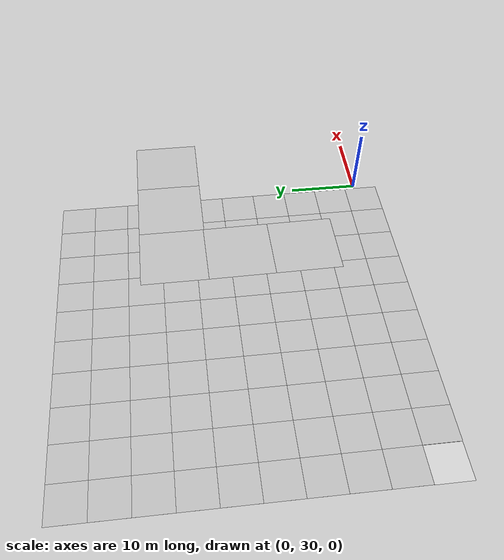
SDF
<sdf version="1.4">
 <world name="default">
  <model name="pavement_plane_3">
   <static>1</static>
   <link name="link">
    <collision name="collision">
     <geometry><plane><normal>0 0 1</normal><size>50 50</size></plane></geometry>
     <surface><friction><ode><mu>100</mu><mu2>50</mu2></ode></friction></surface>
    </collision>
    <visual name="visual_0">
     <pose>-25 -25 0 0 -0 0</pose>
     <cast_shadows>0</cast_shadows>
     <geometry><plane><normal>0 0 1</normal><size>5 5</size></plane></geometry>
     <material>
      <script>
       <uri>model://pavement_plane/materials/scripts</uri>
       <uri>model://pavement_plane/materials/textures</uri>
       <name>vrc/pavement</name>
      </script>
     </material>
    </visual>
    <visual name="visual_1">
     <pose>-20 -25 0 0 -0 0</pose>
     <cast_shadows>0</cast_shadows>
     <geometry><plane><normal>0 0 1</normal><size>5 5</size></plane></geometry>
     <material>
      <script>
       <uri>model://pavement_plane/materials/scripts</uri>
       <uri>model://pavement_plane/materials/textures</uri>
       <name>vrc/pavement</name>
      </script>
     </material>
    </visual>
    <visual name="visual_2">
     <pose>-15 -25 0 0 -0 0</pose>
     <cast_shadows>0</cast_shadows>
     <geometry><plane><normal>0 0 1</normal><size>5 5</size></plane></geometry>
     <material>
      <script>
       <uri>model://pavement_plane/materials/scripts</uri>
       <uri>model://pavement_plane/materials/textures</uri>
       <name>vrc/pavement</name>
      </script>
     </material>
    </visual>
    <visual name="visual_3">
     <pose>-10 -25 0 0 -0 0</pose>
     <cast_shadows>0</cast_shadows>
     <geometry><plane><normal>0 0 1</normal><size>5 5</size></plane></geometry>
     <material>
      <script>
       <uri>model://pavement_plane/materials/scripts</uri>
       <uri>model://pavement_plane/materials/textures</uri>
       <name>vrc/pavement</name>
      </script>
     </material>
    </visual>
    <visual name="visual_4">
     <pose>-5 -25 0 0 -0 0</pose>
     <cast_shadows>0</cast_shadows>
     <geometry><plane><normal>0 0 1</normal><size>5 5</size></plane></geometry>
     <material>
      <script>
       <uri>model://pavement_plane/materials/scripts</uri>
       <uri>model://pavement_plane/materials/textures</uri>
       <name>vrc/pavement</name>
      </script>
     </material>
    </visual>
    <visual name="visual_5">
     <pose>0 -25 0 0 -0 0</pose>
     <cast_shadows>0</cast_shadows>
     <geometry><plane><normal>0 0 1</normal><size>5 5</size></plane></geometry>
     <material>
      <script>
       <uri>model://pavement_plane/materials/scripts</uri>
       <uri>model://pavement_plane/materials/textures</uri>
       <name>vrc/pavement</name>
      </script>
     </material>
    </visual>
    <visual name="visual_6">
     <pose>5 -25 0 0 -0 0</pose>
     <cast_shadows>0</cast_shadows>
     <geometry><plane><normal>0 0 1</normal><size>5 5</size></plane></geometry>
     <material>
      <script>
       <uri>model://pavement_plane/materials/scripts</uri>
       <uri>model://pavement_plane/materials/textures</uri>
       <name>vrc/pavement</name>
      </script>
     </material>
    </visual>
    <visual name="visual_7">
     <pose>10 -25 0 0 -0 0</pose>
     <cast_shadows>0</cast_shadows>
     <geometry><plane><normal>0 0 1</normal><size>5 5</size></plane></geometry>
     <material>
      <script>
       <uri>model://pavement_plane/materials/scripts</uri>
       <uri>model://pavement_plane/materials/textures</uri>
       <name>vrc/pavement</name>
      </script>
     </material>
    </visual>
    <visual name="visual_8">
     <pose>15 -25 0 0 -0 0</pose>
     <cast_shadows>0</cast_shadows>
     <geometry><plane><normal>0 0 1</normal><size>5 5</size></plane></geometry>
     <material>
      <script>
       <uri>model://pavement_plane/materials/scripts</uri>
       <uri>model://pavement_plane/materials/textures</uri>
       <name>vrc/pavement</name>
      </script>
     </material>
    </visual>
    <visual name="visual_9">
     <pose>20 -25 0 0 -0 0</pose>
     <cast_shadows>0</cast_shadows>
     <geometry><plane><normal>0 0 1</normal><size>5 5</size></plane></geometry>
     <material>
      <script>
       <uri>model://pavement_plane/materials/scripts</uri>
       <uri>model://pavement_plane/materials/textures</uri>
       <name>vrc/pavement</name>
      </script>
     </material>
    </visual>
    <visual name="visual_10">
     <pose>-25 -20 0 0 -0 0</pose>
     <cast_shadows>0</cast_shadows>
     <geometry><plane><normal>0 0 1</normal><size>5 5</size></plane></geometry>
     <material>
      <script>
       <uri>model://pavement_plane/materials/scripts</uri>
       <uri>model://pavement_plane/materials/textures</uri>
       <name>vrc/pavement</name>
      </script>
     </material>
    </visual>
    <visual name="visual_11">
     <pose>-20 -20 0 0 -0 0</pose>
     <cast_shadows>0</cast_shadows>
     <geometry><plane><normal>0 0 1</normal><size>5 5</size></plane></geometry>
     <material>
      <script>
       <uri>model://pavement_plane/materials/scripts</uri>
       <uri>model://pavement_plane/materials/textures</uri>
       <name>vrc/pavement</name>
      </script>
     </material>
    </visual>
    <visual name="visual_12">
     <pose>-15 -20 0 0 -0 0</pose>
     <cast_shadows>0</cast_shadows>
     <geometry><plane><normal>0 0 1</normal><size>5 5</size></plane></geometry>
     <material>
      <script>
       <uri>model://pavement_plane/materials/scripts</uri>
       <uri>model://pavement_plane/materials/textures</uri>
       <name>vrc/pavement</name>
      </script>
     </material>
    </visual>
    <visual name="visual_13">
     <pose>-10 -20 0 0 -0 0</pose>
     <cast_shadows>0</cast_shadows>
     <geometry><plane><normal>0 0 1</normal><size>5 5</size></plane></geometry>
     <material>
      <script>
       <uri>model://pavement_plane/materials/scripts</uri>
       <uri>model://pavement_plane/materials/textures</uri>
       <name>vrc/pavement</name>
      </script>
     </material>
    </visual>
    <visual name="visual_14">
     <pose>-5 -20 0 0 -0 0</pose>
     <cast_shadows>0</cast_shadows>
     <geometry><plane><normal>0 0 1</normal><size>5 5</size></plane></geometry>
     <material>
      <script>
       <uri>model://pavement_plane/materials/scripts</uri>
       <uri>model://pavement_plane/materials/textures</uri>
       <name>vrc/pavement</name>
      </script>
     </material>
    </visual>
    <visual name="visual_15">
     <pose>0 -20 0 0 -0 0</pose>
     <cast_shadows>0</cast_shadows>
     <geometry><plane><normal>0 0 1</normal><size>5 5</size></plane></geometry>
     <material>
      <script>
       <uri>model://pavement_plane/materials/scripts</uri>
       <uri>model://pavement_plane/materials/textures</uri>
       <name>vrc/pavement</name>
      </script>
     </material>
    </visual>
    <visual name="visual_16">
     <pose>5 -20 0 0 -0 0</pose>
     <cast_shadows>0</cast_shadows>
     <geometry><plane><normal>0 0 1</normal><size>5 5</size></plane></geometry>
     <material>
      <script>
       <uri>model://pavement_plane/materials/scripts</uri>
       <uri>model://pavement_plane/materials/textures</uri>
       <name>vrc/pavement</name>
      </script>
     </material>
    </visual>
    <visual name="visual_17">
     <pose>10 -20 0 0 -0 0</pose>
     <cast_shadows>0</cast_shadows>
     <geometry><plane><normal>0 0 1</normal><size>5 5</size></plane></geometry>
     <material>
      <script>
       <uri>model://pavement_plane/materials/scripts</uri>
       <uri>model://pavement_plane/materials/textures</uri>
       <name>vrc/pavement</name>
      </script>
     </material>
    </visual>
    <visual name="visual_18">
     <pose>15 -20 0 0 -0 0</pose>
     <cast_shadows>0</cast_shadows>
     <geometry><plane><normal>0 0 1</normal><size>5 5</size></plane></geometry>
     <material>
      <script>
       <uri>model://pavement_plane/materials/scripts</uri>
       <uri>model://pavement_plane/materials/textures</uri>
       <name>vrc/pavement</name>
      </script>
     </material>
    </visual>
    <visual name="visual_19">
     <pose>20 -20 0 0 -0 0</pose>
     <cast_shadows>0</cast_shadows>
     <geometry><plane><normal>0 0 1</normal><size>5 5</size></plane></geometry>
     <material>
      <script>
       <uri>model://pavement_plane/materials/scripts</uri>
       <uri>model://pavement_plane/materials/textures</uri>
       <name>vrc/pavement</name>
      </script>
     </material>
    </visual>
    <visual name="visual_20">
     <pose>-25 -15 0 0 -0 0</pose>
     <cast_shadows>0</cast_shadows>
     <geometry><plane><normal>0 0 1</normal><size>5 5</size></plane></geometry>
     <material>
      <script>
       <uri>model://pavement_plane/materials/scripts</uri>
       <uri>model://pavement_plane/materials/textures</uri>
       <name>vrc/pavement</name>
      </script>
     </material>
    </visual>
    <visual name="visual_21">
     <pose>-20 -15 0 0 -0 0</pose>
     <cast_shadows>0</cast_shadows>
     <geometry><plane><normal>0 0 1</normal><size>5 5</size></plane></geometry>
     <material>
      <script>
       <uri>model://pavement_plane/materials/scripts</uri>
       <uri>model://pavement_plane/materials/textures</uri>
       <name>vrc/pavement</name>
      </script>
     </material>
    </visual>
    <visual name="visual_22">
     <pose>-15 -15 0 0 -0 0</pose>
     <cast_shadows>0</cast_shadows>
     <geometry><plane><normal>0 0 1</normal><size>5 5</size></plane></geometry>
     <material>
      <script>
       <uri>model://pavement_plane/materials/scripts</uri>
       <uri>model://pavement_plane/materials/textures</uri>
       <name>vrc/pavement</name>
      </script>
     </material>
    </visual>
    <visual name="visual_23">
     <pose>-10 -15 0 0 -0 0</pose>
     <cast_shadows>0</cast_shadows>
     <geometry><plane><normal>0 0 1</normal><size>5 5</size></plane></geometry>
     <material>
      <script>
       <uri>model://pavement_plane/materials/scripts</uri>
       <uri>model://pavement_plane/materials/textures</uri>
       <name>vrc/pavement</name>
      </script>
     </material>
    </visual>
    <visual name="visual_24">
     <pose>-5 -15 0 0 -0 0</pose>
     <cast_shadows>0</cast_shadows>
     <geometry><plane><normal>0 0 1</normal><size>5 5</size></plane></geometry>
     <material>
      <script>
       <uri>model://pavement_plane/materials/scripts</uri>
       <uri>model://pavement_plane/materials/textures</uri>
       <name>vrc/pavement</name>
      </script>
     </material>
    </visual>
    <visual name="visual_25">
     <pose>0 -15 0 0 -0 0</pose>
     <cast_shadows>0</cast_shadows>
     <geometry><plane><normal>0 0 1</normal><size>5 5</size></plane></geometry>
     <material>
      <script>
       <uri>model://pavement_plane/materials/scripts</uri>
       <uri>model://pavement_plane/materials/textures</uri>
       <name>vrc/pavement</name>
      </script>
     </material>
    </visual>
    <visual name="visual_26">
     <pose>5 -15 0 0 -0 0</pose>
     <cast_shadows>0</cast_shadows>
     <geometry><plane><normal>0 0 1</normal><size>5 5</size></plane></geometry>
     <material>
      <script>
       <uri>model://pavement_plane/materials/scripts</uri>
       <uri>model://pavement_plane/materials/textures</uri>
       <name>vrc/pavement</name>
      </script>
     </material>
    </visual>
    <visual name="visual_27">
     <pose>10 -15 0 0 -0 0</pose>
     <cast_shadows>0</cast_shadows>
     <geometry><plane><normal>0 0 1</normal><size>5 5</size></plane></geometry>
     <material>
      <script>
       <uri>model://pavement_plane/materials/scripts</uri>
       <uri>model://pavement_plane/materials/textures</uri>
       <name>vrc/pavement</name>
      </script>
     </material>
    </visual>
    <visual name="visual_28">
     <pose>15 -15 0 0 -0 0</pose>
     <cast_shadows>0</cast_shadows>
     <geometry><plane><normal>0 0 1</normal><size>5 5</size></plane></geometry>
     <material>
      <script>
       <uri>model://pavement_plane/materials/scripts</uri>
       <uri>model://pavement_plane/materials/textures</uri>
       <name>vrc/pavement</name>
      </script>
     </material>
    </visual>
    <visual name="visual_29">
     <pose>20 -15 0 0 -0 0</pose>
     <cast_shadows>0</cast_shadows>
     <geometry><plane><normal>0 0 1</normal><size>5 5</size></plane></geometry>
     <material>
      <script>
       <uri>model://pavement_plane/materials/scripts</uri>
       <uri>model://pavement_plane/materials/textures</uri>
       <name>vrc/pavement</name>
      </script>
     </material>
    </visual>
    <visual name="visual_30">
     <pose>-25 -10 0 0 -0 0</pose>
     <cast_shadows>0</cast_shadows>
     <geometry><plane><normal>0 0 1</normal><size>5 5</size></plane></geometry>
     <material>
      <script>
       <uri>model://pavement_plane/materials/scripts</uri>
       <uri>model://pavement_plane/materials/textures</uri>
       <name>vrc/pavement</name>
      </script>
     </material>
    </visual>
    <visual name="visual_31">
     <pose>-20 -10 0 0 -0 0</pose>
     <cast_shadows>0</cast_shadows>
     <geometry><plane><normal>0 0 1</normal><size>5 5</size></plane></geometry>
     <material>
      <script>
       <uri>model://pavement_plane/materials/scripts</uri>
       <uri>model://pavement_plane/materials/textures</uri>
       <name>vrc/pavement</name>
      </script>
     </material>
    </visual>
    <visual name="visual_32">
     <pose>-15 -10 0 0 -0 0</pose>
     <cast_shadows>0</cast_shadows>
     <geometry><plane><normal>0 0 1</normal><size>5 5</size></plane></geometry>
     <material>
      <script>
       <uri>model://pavement_plane/materials/scripts</uri>
       <uri>model://pavement_plane/materials/textures</uri>
       <name>vrc/pavement</name>
      </script>
     </material>
    </visual>
    <visual name="visual_33">
     <pose>-10 -10 0 0 -0 0</pose>
     <cast_shadows>0</cast_shadows>
     <geometry><plane><normal>0 0 1</normal><size>5 5</size></plane></geometry>
     <material>
      <script>
       <uri>model://pavement_plane/materials/scripts</uri>
       <uri>model://pavement_plane/materials/textures</uri>
       <name>vrc/pavement</name>
      </script>
     </material>
    </visual>
    <visual name="visual_34">
     <pose>-5 -10 0 0 -0 0</pose>
     <cast_shadows>0</cast_shadows>
     <geometry><plane><normal>0 0 1</normal><size>5 5</size></plane></geometry>
     <material>
      <script>
       <uri>model://pavement_plane/materials/scripts</uri>
       <uri>model://pavement_plane/materials/textures</uri>
       <name>vrc/pavement</name>
      </script>
     </material>
    </visual>
    <visual name="visual_35">
     <pose>0 -10 0 0 -0 0</pose>
     <cast_shadows>0</cast_shadows>
     <geometry><plane><normal>0 0 1</normal><size>5 5</size></plane></geometry>
     <material>
      <script>
       <uri>model://pavement_plane/materials/scripts</uri>
       <uri>model://pavement_plane/materials/textures</uri>
       <name>vrc/pavement</name>
      </script>
     </material>
    </visual>
    <visual name="visual_36">
     <pose>5 -10 0 0 -0 0</pose>
     <cast_shadows>0</cast_shadows>
     <geometry><plane><normal>0 0 1</normal><size>5 5</size></plane></geometry>
     <material>
      <script>
       <uri>model://pavement_plane/materials/scripts</uri>
       <uri>model://pavement_plane/materials/textures</uri>
       <name>vrc/pavement</name>
      </script>
     </material>
    </visual>
    <visual name="visual_37">
     <pose>10 -10 0 0 -0 0</pose>
     <cast_shadows>0</cast_shadows>
     <geometry><plane><normal>0 0 1</normal><size>5 5</size></plane></geometry>
     <material>
      <script>
       <uri>model://pavement_plane/materials/scripts</uri>
       <uri>model://pavement_plane/materials/textures</uri>
       <name>vrc/pavement</name>
      </script>
     </material>
    </visual>
    <visual name="visual_38">
     <pose>15 -10 0 0 -0 0</pose>
     <cast_shadows>0</cast_shadows>
     <geometry><plane><normal>0 0 1</normal><size>5 5</size></plane></geometry>
     <material>
      <script>
       <uri>model://pavement_plane/materials/scripts</uri>
       <uri>model://pavement_plane/materials/textures</uri>
       <name>vrc/pavement</name>
      </script>
     </material>
    </visual>
    <visual name="visual_39">
     <pose>20 -10 0 0 -0 0</pose>
     <cast_shadows>0</cast_shadows>
     <geometry><plane><normal>0 0 1</normal><size>5 5</size></plane></geometry>
     <material>
      <script>
       <uri>model://pavement_plane/materials/scripts</uri>
       <uri>model://pavement_plane/materials/textures</uri>
       <name>vrc/pavement</name>
      </script>
     </material>
    </visual>
    <visual name="visual_40">
     <pose>-25 -5 0 0 -0 0</pose>
     <cast_shadows>0</cast_shadows>
     <geometry><plane><normal>0 0 1</normal><size>5 5</size></plane></geometry>
     <material>
      <script>
       <uri>model://pavement_plane/materials/scripts</uri>
       <uri>model://pavement_plane/materials/textures</uri>
       <name>vrc/pavement</name>
      </script>
     </material>
    </visual>
    <visual name="visual_41">
     <pose>-20 -5 0 0 -0 0</pose>
     <cast_shadows>0</cast_shadows>
     <geometry><plane><normal>0 0 1</normal><size>5 5</size></plane></geometry>
     <material>
      <script>
       <uri>model://pavement_plane/materials/scripts</uri>
       <uri>model://pavement_plane/materials/textures</uri>
       <name>vrc/pavement</name>
      </script>
     </material>
    </visual>
    <visual name="visual_42">
     <pose>-15 -5 0 0 -0 0</pose>
     <cast_shadows>0</cast_shadows>
     <geometry><plane><normal>0 0 1</normal><size>5 5</size></plane></geometry>
     <material>
      <script>
       <uri>model://pavement_plane/materials/scripts</uri>
       <uri>model://pavement_plane/materials/textures</uri>
       <name>vrc/pavement</name>
      </script>
     </material>
    </visual>
    <visual name="visual_43">
     <pose>-10 -5 0 0 -0 0</pose>
     <cast_shadows>0</cast_shadows>
     <geometry><plane><normal>0 0 1</normal><size>5 5</size></plane></geometry>
     <material>
      <script>
       <uri>model://pavement_plane/materials/scripts</uri>
       <uri>model://pavement_plane/materials/textures</uri>
       <name>vrc/pavement</name>
      </script>
     </material>
    </visual>
    <visual name="visual_44">
     <pose>-5 -5 0 0 -0 0</pose>
     <cast_shadows>0</cast_shadows>
     <geometry><plane><normal>0 0 1</normal><size>5 5</size></plane></geometry>
     <material>
      <script>
       <uri>model://pavement_plane/materials/scripts</uri>
       <uri>model://pavement_plane/materials/textures</uri>
       <name>vrc/pavement</name>
      </script>
     </material>
    </visual>
    <visual name="visual_45">
     <pose>0 -5 0 0 -0 0</pose>
     <cast_shadows>0</cast_shadows>
     <geometry><plane><normal>0 0 1</normal><size>5 5</size></plane></geometry>
     <material>
      <script>
       <uri>model://pavement_plane/materials/scripts</uri>
       <uri>model://pavement_plane/materials/textures</uri>
       <name>vrc/pavement</name>
      </script>
     </material>
    </visual>
    <visual name="visual_46">
     <pose>5 -5 0 0 -0 0</pose>
     <cast_shadows>0</cast_shadows>
     <geometry><plane><normal>0 0 1</normal><size>5 5</size></plane></geometry>
     <material>
      <script>
       <uri>model://pavement_plane/materials/scripts</uri>
       <uri>model://pavement_plane/materials/textures</uri>
       <name>vrc/pavement</name>
      </script>
     </material>
    </visual>
    <visual name="visual_47">
     <pose>10 -5 0 0 -0 0</pose>
     <cast_shadows>0</cast_shadows>
     <geometry><plane><normal>0 0 1</normal><size>5 5</size></plane></geometry>
     <material>
      <script>
       <uri>model://pavement_plane/materials/scripts</uri>
       <uri>model://pavement_plane/materials/textures</uri>
       <name>vrc/pavement</name>
      </script>
     </material>
    </visual>
    <visual name="visual_48">
     <pose>15 -5 0 0 -0 0</pose>
     <cast_shadows>0</cast_shadows>
     <geometry><plane><normal>0 0 1</normal><size>5 5</size></plane></geometry>
     <material>
      <script>
       <uri>model://pavement_plane/materials/scripts</uri>
       <uri>model://pavement_plane/materials/textures</uri>
       <name>vrc/pavement</name>
      </script>
     </material>
    </visual>
    <visual name="visual_49">
     <pose>20 -5 0 0 -0 0</pose>
     <cast_shadows>0</cast_shadows>
     <geometry><plane><normal>0 0 1</normal><size>5 5</size></plane></geometry>
     <material>
      <script>
       <uri>model://pavement_plane/materials/scripts</uri>
       <uri>model://pavement_plane/materials/textures</uri>
       <name>vrc/pavement</name>
      </script>
     </material>
    </visual>
    <visual name="visual_50">
     <pose>-25 0 0 0 -0 0</pose>
     <cast_shadows>0</cast_shadows>
     <geometry><plane><normal>0 0 1</normal><size>5 5</size></plane></geometry>
     <material>
      <script>
       <uri>model://pavement_plane/materials/scripts</uri>
       <uri>model://pavement_plane/materials/textures</uri>
       <name>vrc/pavement</name>
      </script>
     </material>
    </visual>
    <visual name="visual_51">
     <pose>-20 0 0 0 -0 0</pose>
     <cast_shadows>0</cast_shadows>
     <geometry><plane><normal>0 0 1</normal><size>5 5</size></plane></geometry>
     <material>
      <script>
       <uri>model://pavement_plane/materials/scripts</uri>
       <uri>model://pavement_plane/materials/textures</uri>
       <name>vrc/pavement</name>
      </script>
     </material>
    </visual>
    <visual name="visual_52">
     <pose>-15 0 0 0 -0 0</pose>
     <cast_shadows>0</cast_shadows>
     <geometry><plane><normal>0 0 1</normal><size>5 5</size></plane></geometry>
     <material>
      <script>
       <uri>model://pavement_plane/materials/scripts</uri>
       <uri>model://pavement_plane/materials/textures</uri>
       <name>vrc/pavement</name>
      </script>
     </material>
    </visual>
    <visual name="visual_53">
     <pose>-10 0 0 0 -0 0</pose>
     <cast_shadows>0</cast_shadows>
     <geometry><plane><normal>0 0 1</normal><size>5 5</size></plane></geometry>
     <material>
      <script>
       <uri>model://pavement_plane/materials/scripts</uri>
       <uri>model://pavement_plane/materials/textures</uri>
       <name>vrc/pavement</name>
      </script>
     </material>
    </visual>
    <visual name="visual_54">
     <pose>-5 0 0 0 -0 0</pose>
     <cast_shadows>0</cast_shadows>
     <geometry><plane><normal>0 0 1</normal><size>5 5</size></plane></geometry>
     <material>
      <script>
       <uri>model://pavement_plane/materials/scripts</uri>
       <uri>model://pavement_plane/materials/textures</uri>
       <name>vrc/pavement</name>
      </script>
     </material>
    </visual>
    <visual name="visual_55">
     <cast_shadows>0</cast_shadows>
     <geometry><plane><normal>0 0 1</normal><size>5 5</size></plane></geometry>
     <material>
      <script>
       <uri>model://pavement_plane/materials/scripts</uri>
       <uri>model://pavement_plane/materials/textures</uri>
       <name>vrc/pavement</name>
      </script>
     </material>
    </visual>
    <visual name="visual_56">
     <pose>5 0 0 0 -0 0</pose>
     <cast_shadows>0</cast_shadows>
     <geometry><plane><normal>0 0 1</normal><size>5 5</size></plane></geometry>
     <material>
      <script>
       <uri>model://pavement_plane/materials/scripts</uri>
       <uri>model://pavement_plane/materials/textures</uri>
       <name>vrc/pavement</name>
      </script>
     </material>
    </visual>
    <visual name="visual_57">
     <pose>10 0 0 0 -0 0</pose>
     <cast_shadows>0</cast_shadows>
     <geometry><plane><normal>0 0 1</normal><size>5 5</size></plane></geometry>
     <material>
      <script>
       <uri>model://pavement_plane/materials/scripts</uri>
       <uri>model://pavement_plane/materials/textures</uri>
       <name>vrc/pavement</name>
      </script>
     </material>
    </visual>
    <visual name="visual_58">
     <pose>15 0 0 0 -0 0</pose>
     <cast_shadows>0</cast_shadows>
     <geometry><plane><normal>0 0 1</normal><size>5 5</size></plane></geometry>
     <material>
      <script>
       <uri>model://pavement_plane/materials/scripts</uri>
       <uri>model://pavement_plane/materials/textures</uri>
       <name>vrc/pavement</name>
      </script>
     </material>
    </visual>
    <visual name="visual_59">
     <pose>20 0 0 0 -0 0</pose>
     <cast_shadows>0</cast_shadows>
     <geometry><plane><normal>0 0 1</normal><size>5 5</size></plane></geometry>
     <material>
      <script>
       <uri>model://pavement_plane/materials/scripts</uri>
       <uri>model://pavement_plane/materials/textures</uri>
       <name>vrc/pavement</name>
      </script>
     </material>
    </visual>
    <visual name="visual_60">
     <pose>-25 5 0 0 -0 0</pose>
     <cast_shadows>0</cast_shadows>
     <geometry><plane><normal>0 0 1</normal><size>5 5</size></plane></geometry>
     <material>
      <script>
       <uri>model://pavement_plane/materials/scripts</uri>
       <uri>model://pavement_plane/materials/textures</uri>
       <name>vrc/pavement</name>
      </script>
     </material>
    </visual>
    <visual name="visual_61">
     <pose>-20 5 0 0 -0 0</pose>
     <cast_shadows>0</cast_shadows>
     <geometry><plane><normal>0 0 1</normal><size>5 5</size></plane></geometry>
     <material>
      <script>
       <uri>model://pavement_plane/materials/scripts</uri>
       <uri>model://pavement_plane/materials/textures</uri>
       <name>vrc/pavement</name>
      </script>
     </material>
    </visual>
    <visual name="visual_62">
     <pose>-15 5 0 0 -0 0</pose>
     <cast_shadows>0</cast_shadows>
     <geometry><plane><normal>0 0 1</normal><size>5 5</size></plane></geometry>
     <material>
      <script>
       <uri>model://pavement_plane/materials/scripts</uri>
       <uri>model://pavement_plane/materials/textures</uri>
       <name>vrc/pavement</name>
      </script>
     </material>
    </visual>
    <visual name="visual_63">
     <pose>-10 5 0 0 -0 0</pose>
     <cast_shadows>0</cast_shadows>
     <geometry><plane><normal>0 0 1</normal><size>5 5</size></plane></geometry>
     <material>
      <script>
       <uri>model://pavement_plane/materials/scripts</uri>
       <uri>model://pavement_plane/materials/textures</uri>
       <name>vrc/pavement</name>
      </script>
     </material>
    </visual>
    <visual name="visual_64">
     <pose>-5 5 0 0 -0 0</pose>
     <cast_shadows>0</cast_shadows>
     <geometry><plane><normal>0 0 1</normal><size>5 5</size></plane></geometry>
     <material>
      <script>
       <uri>model://pavement_plane/materials/scripts</uri>
       <uri>model://pavement_plane/materials/textures</uri>
       <name>vrc/pavement</name>
      </script>
     </material>
    </visual>
    <visual name="visual_65">
     <pose>0 5 0 0 -0 0</pose>
     <cast_shadows>0</cast_shadows>
     <geometry><plane><normal>0 0 1</normal><size>5 5</size></plane></geometry>
     <material>
      <script>
       <uri>model://pavement_plane/materials/scripts</uri>
       <uri>model://pavement_plane/materials/textures</uri>
       <name>vrc/pavement</name>
      </script>
     </material>
    </visual>
    <visual name="visual_66">
     <pose>5 5 0 0 -0 0</pose>
     <cast_shadows>0</cast_shadows>
     <geometry><plane><normal>0 0 1</normal><size>5 5</size></plane></geometry>
     <material>
      <script>
       <uri>model://pavement_plane/materials/scripts</uri>
       <uri>model://pavement_plane/materials/textures</uri>
       <name>vrc/pavement</name>
      </script>
     </material>
    </visual>
    <visual name="visual_67">
     <pose>10 5 0 0 -0 0</pose>
     <cast_shadows>0</cast_shadows>
     <geometry><plane><normal>0 0 1</normal><size>5 5</size></plane></geometry>
     <material>
      <script>
       <uri>model://pavement_plane/materials/scripts</uri>
       <uri>model://pavement_plane/materials/textures</uri>
       <name>vrc/pavement</name>
      </script>
     </material>
    </visual>
    <visual name="visual_68">
     <pose>15 5 0 0 -0 0</pose>
     <cast_shadows>0</cast_shadows>
     <geometry><plane><normal>0 0 1</normal><size>5 5</size></plane></geometry>
     <material>
      <script>
       <uri>model://pavement_plane/materials/scripts</uri>
       <uri>model://pavement_plane/materials/textures</uri>
       <name>vrc/pavement</name>
      </script>
     </material>
    </visual>
    <visual name="visual_69">
     <pose>20 5 0 0 -0 0</pose>
     <cast_shadows>0</cast_shadows>
     <geometry><plane><normal>0 0 1</normal><size>5 5</size></plane></geometry>
     <material>
      <script>
       <uri>model://pavement_plane/materials/scripts</uri>
       <uri>model://pavement_plane/materials/textures</uri>
       <name>vrc/pavement</name>
      </script>
     </material>
    </visual>
    <visual name="visual_70">
     <pose>-25 10 0 0 -0 0</pose>
     <cast_shadows>0</cast_shadows>
     <geometry><plane><normal>0 0 1</normal><size>5 5</size></plane></geometry>
     <material>
      <script>
       <uri>model://pavement_plane/materials/scripts</uri>
       <uri>model://pavement_plane/materials/textures</uri>
       <name>vrc/pavement</name>
      </script>
     </material>
    </visual>
    <visual name="visual_71">
     <pose>-20 10 0 0 -0 0</pose>
     <cast_shadows>0</cast_shadows>
     <geometry><plane><normal>0 0 1</normal><size>5 5</size></plane></geometry>
     <material>
      <script>
       <uri>model://pavement_plane/materials/scripts</uri>
       <uri>model://pavement_plane/materials/textures</uri>
       <name>vrc/pavement</name>
      </script>
     </material>
    </visual>
    <visual name="visual_72">
     <pose>-15 10 0 0 -0 0</pose>
     <cast_shadows>0</cast_shadows>
     <geometry><plane><normal>0 0 1</normal><size>5 5</size></plane></geometry>
     <material>
      <script>
       <uri>model://pavement_plane/materials/scripts</uri>
       <uri>model://pavement_plane/materials/textures</uri>
       <name>vrc/pavement</name>
      </script>
     </material>
    </visual>
    <visual name="visual_73">
     <pose>-10 10 0 0 -0 0</pose>
     <cast_shadows>0</cast_shadows>
     <geometry><plane><normal>0 0 1</normal><size>5 5</size></plane></geometry>
     <material>
      <script>
       <uri>model://pavement_plane/materials/scripts</uri>
       <uri>model://pavement_plane/materials/textures</uri>
       <name>vrc/pavement</name>
      </script>
     </material>
    </visual>
    <visual name="visual_74">
     <pose>-5 10 0 0 -0 0</pose>
     <cast_shadows>0</cast_shadows>
     <geometry><plane><normal>0 0 1</normal><size>5 5</size></plane></geometry>
     <material>
      <script>
       <uri>model://pavement_plane/materials/scripts</uri>
       <uri>model://pavement_plane/materials/textures</uri>
       <name>vrc/pavement</name>
      </script>
     </material>
    </visual>
    <visual name="visual_75">
     <pose>0 10 0 0 -0 0</pose>
     <cast_shadows>0</cast_shadows>
     <geometry><plane><normal>0 0 1</normal><size>5 5</size></plane></geometry>
     <material>
      <script>
       <uri>model://pavement_plane/materials/scripts</uri>
       <uri>model://pavement_plane/materials/textures</uri>
       <name>vrc/pavement</name>
      </script>
     </material>
    </visual>
    <visual name="visual_76">
     <pose>5 10 0 0 -0 0</pose>
     <cast_shadows>0</cast_shadows>
     <geometry><plane><normal>0 0 1</normal><size>5 5</size></plane></geometry>
     <material>
      <script>
       <uri>model://pavement_plane/materials/scripts</uri>
       <uri>model://pavement_plane/materials/textures</uri>
       <name>vrc/pavement</name>
      </script>
     </material>
    </visual>
    <visual name="visual_77">
     <pose>10 10 0 0 -0 0</pose>
     <cast_shadows>0</cast_shadows>
     <geometry><plane><normal>0 0 1</normal><size>5 5</size></plane></geometry>
     <material>
      <script>
       <uri>model://pavement_plane/materials/scripts</uri>
       <uri>model://pavement_plane/materials/textures</uri>
       <name>vrc/pavement</name>
      </script>
     </material>
    </visual>
    <visual name="visual_78">
     <pose>15 10 0 0 -0 0</pose>
     <cast_shadows>0</cast_shadows>
     <geometry><plane><normal>0 0 1</normal><size>5 5</size></plane></geometry>
     <material>
      <script>
       <uri>model://pavement_plane/materials/scripts</uri>
       <uri>model://pavement_plane/materials/textures</uri>
       <name>vrc/pavement</name>
      </script>
     </material>
    </visual>
    <visual name="visual_79">
     <pose>20 10 0 0 -0 0</pose>
     <cast_shadows>0</cast_shadows>
     <geometry><plane><normal>0 0 1</normal><size>5 5</size></plane></geometry>
     <material>
      <script>
       <uri>model://pavement_plane/materials/scripts</uri>
       <uri>model://pavement_plane/materials/textures</uri>
       <name>vrc/pavement</name>
      </script>
     </material>
    </visual>
    <visual name="visual_80">
     <pose>-25 15 0 0 -0 0</pose>
     <cast_shadows>0</cast_shadows>
     <geometry><plane><normal>0 0 1</normal><size>5 5</size></plane></geometry>
     <material>
      <script>
       <uri>model://pavement_plane/materials/scripts</uri>
       <uri>model://pavement_plane/materials/textures</uri>
       <name>vrc/pavement</name>
      </script>
     </material>
    </visual>
    <visual name="visual_81">
     <pose>-20 15 0 0 -0 0</pose>
     <cast_shadows>0</cast_shadows>
     <geometry><plane><normal>0 0 1</normal><size>5 5</size></plane></geometry>
     <material>
      <script>
       <uri>model://pavement_plane/materials/scripts</uri>
       <uri>model://pavement_plane/materials/textures</uri>
       <name>vrc/pavement</name>
      </script>
     </material>
    </visual>
    <visual name="visual_82">
     <pose>-15 15 0 0 -0 0</pose>
     <cast_shadows>0</cast_shadows>
     <geometry><plane><normal>0 0 1</normal><size>5 5</size></plane></geometry>
     <material>
      <script>
       <uri>model://pavement_plane/materials/scripts</uri>
       <uri>model://pavement_plane/materials/textures</uri>
       <name>vrc/pavement</name>
      </script>
     </material>
    </visual>
    <visual name="visual_83">
     <pose>-10 15 0 0 -0 0</pose>
     <cast_shadows>0</cast_shadows>
     <geometry><plane><normal>0 0 1</normal><size>5 5</size></plane></geometry>
     <material>
      <script>
       <uri>model://pavement_plane/materials/scripts</uri>
       <uri>model://pavement_plane/materials/textures</uri>
       <name>vrc/pavement</name>
      </script>
     </material>
    </visual>
    <visual name="visual_84">
     <pose>-5 15 0 0 -0 0</pose>
     <cast_shadows>0</cast_shadows>
     <geometry><plane><normal>0 0 1</normal><size>5 5</size></plane></geometry>
     <material>
      <script>
       <uri>model://pavement_plane/materials/scripts</uri>
       <uri>model://pavement_plane/materials/textures</uri>
       <name>vrc/pavement</name>
      </script>
     </material>
    </visual>
    <visual name="visual_85">
     <pose>0 15 0 0 -0 0</pose>
     <cast_shadows>0</cast_shadows>
     <geometry><plane><normal>0 0 1</normal><size>5 5</size></plane></geometry>
     <material>
      <script>
       <uri>model://pavement_plane/materials/scripts</uri>
       <uri>model://pavement_plane/materials/textures</uri>
       <name>vrc/pavement</name>
      </script>
     </material>
    </visual>
    <visual name="visual_86">
     <pose>5 15 0 0 -0 0</pose>
     <cast_shadows>0</cast_shadows>
     <geometry><plane><normal>0 0 1</normal><size>5 5</size></plane></geometry>
     <material>
      <script>
       <uri>model://pavement_plane/materials/scripts</uri>
       <uri>model://pavement_plane/materials/textures</uri>
       <name>vrc/pavement</name>
      </script>
     </material>
    </visual>
    <visual name="visual_87">
     <pose>10 15 0 0 -0 0</pose>
     <cast_shadows>0</cast_shadows>
     <geometry><plane><normal>0 0 1</normal><size>5 5</size></plane></geometry>
     <material>
      <script>
       <uri>model://pavement_plane/materials/scripts</uri>
       <uri>model://pavement_plane/materials/textures</uri>
       <name>vrc/pavement</name>
      </script>
     </material>
    </visual>
    <visual name="visual_88">
     <pose>15 15 0 0 -0 0</pose>
     <cast_shadows>0</cast_shadows>
     <geometry><plane><normal>0 0 1</normal><size>5 5</size></plane></geometry>
     <material>
      <script>
       <uri>model://pavement_plane/materials/scripts</uri>
       <uri>model://pavement_plane/materials/textures</uri>
       <name>vrc/pavement</name>
      </script>
     </material>
    </visual>
    <visual name="visual_89">
     <pose>20 15 0 0 -0 0</pose>
     <cast_shadows>0</cast_shadows>
     <geometry><plane><normal>0 0 1</normal><size>5 5</size></plane></geometry>
     <material>
      <script>
       <uri>model://pavement_plane/materials/scripts</uri>
       <uri>model://pavement_plane/materials/textures</uri>
       <name>vrc/pavement</name>
      </script>
     </material>
    </visual>
    <visual name="visual_90">
     <pose>-25 20 0 0 -0 0</pose>
     <cast_shadows>0</cast_shadows>
     <geometry><plane><normal>0 0 1</normal><size>5 5</size></plane></geometry>
     <material>
      <script>
       <uri>model://pavement_plane/materials/scripts</uri>
       <uri>model://pavement_plane/materials/textures</uri>
       <name>vrc/pavement</name>
      </script>
     </material>
    </visual>
    <visual name="visual_91">
     <pose>-20 20 0 0 -0 0</pose>
     <cast_shadows>0</cast_shadows>
     <geometry><plane><normal>0 0 1</normal><size>5 5</size></plane></geometry>
     <material>
      <script>
       <uri>model://pavement_plane/materials/scripts</uri>
       <uri>model://pavement_plane/materials/textures</uri>
       <name>vrc/pavement</name>
      </script>
     </material>
    </visual>
    <visual name="visual_92">
     <pose>-15 20 0 0 -0 0</pose>
     <cast_shadows>0</cast_shadows>
     <geometry><plane><normal>0 0 1</normal><size>5 5</size></plane></geometry>
     <material>
      <script>
       <uri>model://pavement_plane/materials/scripts</uri>
       <uri>model://pavement_plane/materials/textures</uri>
       <name>vrc/pavement</name>
      </script>
     </material>
    </visual>
    <visual name="visual_93">
     <pose>-10 20 0 0 -0 0</pose>
     <cast_shadows>0</cast_shadows>
     <geometry><plane><normal>0 0 1</normal><size>5 5</size></plane></geometry>
     <material>
      <script>
       <uri>model://pavement_plane/materials/scripts</uri>
       <uri>model://pavement_plane/materials/textures</uri>
       <name>vrc/pavement</name>
      </script>
     </material>
    </visual>
    <visual name="visual_94">
     <pose>-5 20 0 0 -0 0</pose>
     <cast_shadows>0</cast_shadows>
     <geometry><plane><normal>0 0 1</normal><size>5 5</size></plane></geometry>
     <material>
      <script>
       <uri>model://pavement_plane/materials/scripts</uri>
       <uri>model://pavement_plane/materials/textures</uri>
       <name>vrc/pavement</name>
      </script>
     </material>
    </visual>
    <visual name="visual_95">
     <pose>0 20 0 0 -0 0</pose>
     <cast_shadows>0</cast_shadows>
     <geometry><plane><normal>0 0 1</normal><size>5 5</size></plane></geometry>
     <material>
      <script>
       <uri>model://pavement_plane/materials/scripts</uri>
       <uri>model://pavement_plane/materials/textures</uri>
       <name>vrc/pavement</name>
      </script>
     </material>
    </visual>
    <visual name="visual_96">
     <pose>5 20 0 0 -0 0</pose>
     <cast_shadows>0</cast_shadows>
     <geometry><plane><normal>0 0 1</normal><size>5 5</size></plane></geometry>
     <material>
      <script>
       <uri>model://pavement_plane/materials/scripts</uri>
       <uri>model://pavement_plane/materials/textures</uri>
       <name>vrc/pavement</name>
      </script>
     </material>
    </visual>
    <visual name="visual_97">
     <pose>10 20 0 0 -0 0</pose>
     <cast_shadows>0</cast_shadows>
     <geometry><plane><normal>0 0 1</normal><size>5 5</size></plane></geometry>
     <material>
      <script>
       <uri>model://pavement_plane/materials/scripts</uri>
       <uri>model://pavement_plane/materials/textures</uri>
       <name>vrc/pavement</name>
      </script>
     </material>
    </visual>
    <visual name="visual_98">
     <pose>15 20 0 0 -0 0</pose>
     <cast_shadows>0</cast_shadows>
     <geometry><plane><normal>0 0 1</normal><size>5 5</size></plane></geometry>
     <material>
      <script>
       <uri>model://pavement_plane/materials/scripts</uri>
       <uri>model://pavement_plane/materials/textures</uri>
       <name>vrc/pavement</name>
      </script>
     </material>
    </visual>
    <visual name="visual_99">
     <pose>20 20 0 0 -0 0</pose>
     <cast_shadows>0</cast_shadows>
     <geometry><plane><normal>0 0 1</normal><size>5 5</size></plane></geometry>
     <material>
      <script>
       <uri>model://pavement_plane/materials/scripts</uri>
       <uri>model://pavement_plane/materials/textures</uri>
       <name>vrc/pavement</name>
      </script>
     </material>
    </visual>
    <velocity_decay><linear>0</linear><angular>0</angular></velocity_decay>
   </link>
   <pose>-23 54 0 0 -0 0</pose>
  </model>
  <model name="Road_straight_11">
   <static>1</static>
   <pose>7.63705 59.8246 0 0 -0 0</pose>
   <link name="link">
    <visual name="visual">
     <pose>0 0 0.04 0 -0 0</pose>
     <geometry>
      <mesh><uri>model://Road_straight/models/Road 01.dae</uri><scale>0.39 0.39 1</scale></mesh>
     </geometry>
    </visual>
    <velocity_decay><linear>0</linear><angular>0</angular></velocity_decay>
   </link>
  </model>
  <model name="Road_straight_12">
   <static>1</static>
   <pose>-2.22028 59.8162 0 0 -0 0</pose>
   <link name="link">
    <visual name="visual">
     <pose>0 0 0.04 0 -0 0</pose>
     <geometry>
      <mesh><uri>model://Road_straight/models/Road 01.dae</uri><scale>0.39 0.39 1</scale></mesh>
     </geometry>
    </visual>
    <velocity_decay><linear>0</linear><angular>0</angular></velocity_decay>
   </link>
  </model>
  <model name="Road_hard_curve_3">
   <static>1</static>
   <pose>-11.394 58.6775 0 0 -0 0</pose>
   <link name="link">
    <visual name="visual">
     <pose>0 0 0.04 0 -0 0</pose>
     <geometry>
      <mesh><uri>model://Road_hard_curve/models/Road 09.dae</uri><scale>0.39 0.39 1</scale></mesh>
     </geometry>
    </visual>
    <velocity_decay><linear>0</linear><angular>0</angular></velocity_decay>
   </link>
  </model>
  <model name="Road_straight_13">
   <static>1</static>
   <pose>-11.9156 50.1815 0 0 0 -1.56</pose>
   <link name="link">
    <visual name="visual">
     <pose>0 0 0.04 0 -0 0</pose>
     <geometry>
      <mesh><uri>model://Road_straight/models/Road 01.dae</uri><scale>0.39 0.39 1</scale></mesh>
     </geometry>
    </visual>
    <velocity_decay><linear>0</linear><angular>0</angular></velocity_decay>
   </link>
  </model>
  <model name="Road_straight_14">
   <static>1</static>
   <pose>-11.8106 40.3056 0 0 0 -1.56</pose>
   <link name="link">
    <visual name="visual">
     <pose>0 0 0.04 0 -0 0</pose>
     <geometry>
      <mesh><uri>model://Road_straight/models/Road 01.dae</uri><scale>0.39 0.39 1</scale></mesh>
     </geometry>
    </visual>
    <velocity_decay><linear>0</linear><angular>0</angular></velocity_decay>
   </link>
  </model>
 </world>
</sdf>
